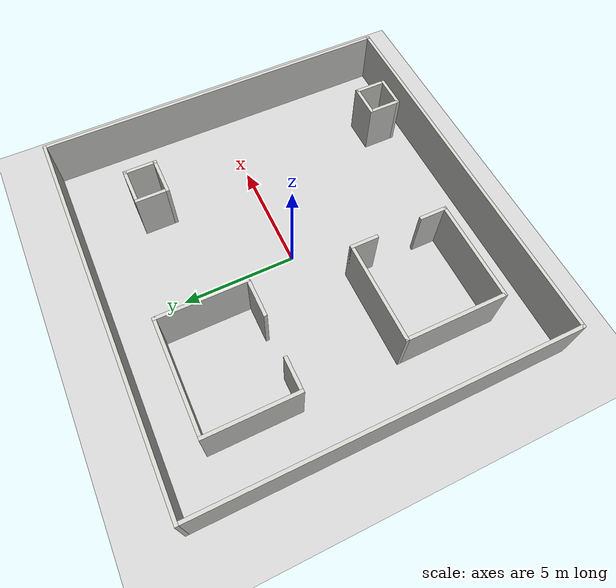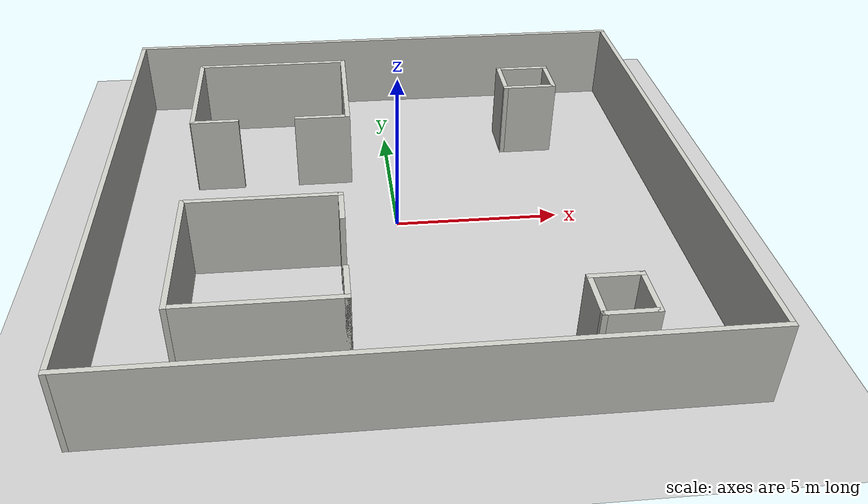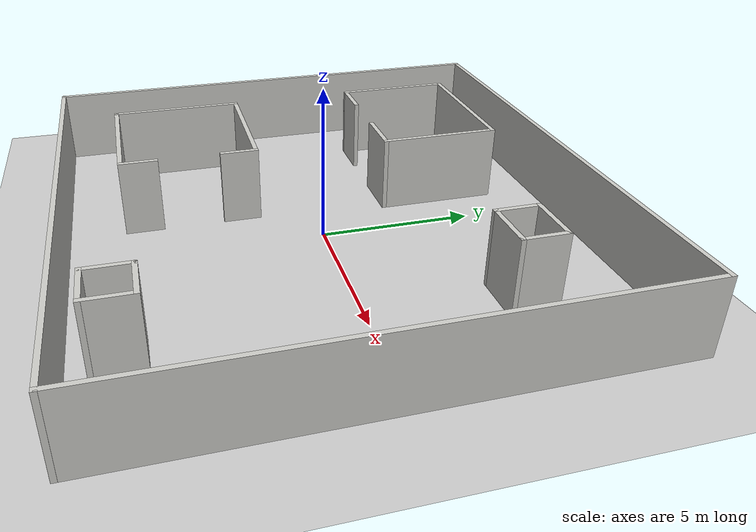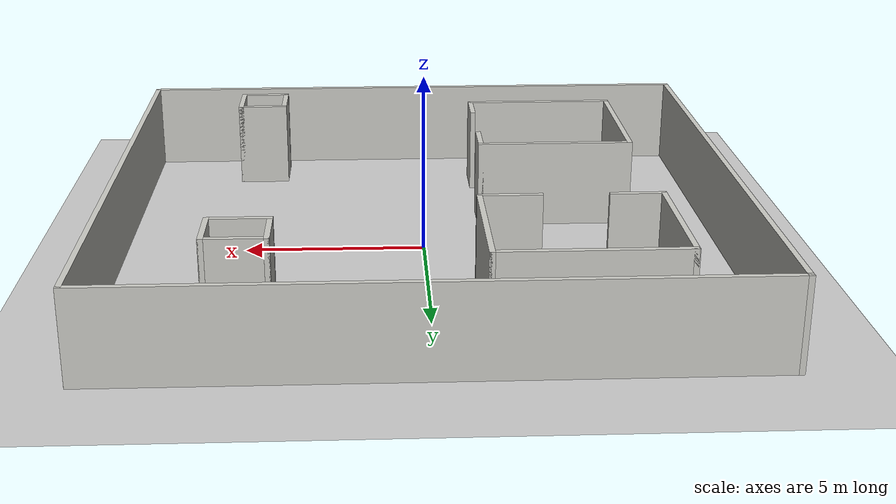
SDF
<?xml version="1.0"?>
<sdf version="1.7">
  <world name="default">

    <!-- Physics Settings (optional) -->
    <physics type="ode">
      <gravity>0 0 -9.8</gravity>
      <max_step_size>0.001</max_step_size>
    </physics>

    <!-- Ground Plane -->
    <model name="ground_plane">
      <pose>0 0 0 0 0 0</pose>
      <link name="link">
        <collision name="collision">
          <geometry>
            <plane>
              <normal>0 0 1</normal>
              <size>100 100</size>
            </plane>
          </geometry>
        </collision>
        <visual name="visual">
          <geometry>
            <plane>
              <normal>0 0 1</normal>
              <size>100 100</size>
            </plane>
          </geometry>
          <material>
            <ambient>0.3 0.3 0.3 1.0</ambient>
            <diffuse>0.8 0.8 0.8 1.0</diffuse>
            <specular>0.0 0.0 0.0 1.0</specular>
          </material>
        </visual>
      </link>
    </model>

    <!-- Add your building model -->
    <include>
      <uri>model://map3</uri> <!-- Reference to the model in Gazebo's model database -->
      <pose>0 0 0 0 0 0</pose> <!-- Position of the model in the world -->
    </include>

  </world>
</sdf>

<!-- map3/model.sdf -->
<sdf version='1.7'>
  <model name='map3'>
    <pose>0.337223 0.137515 0 0 -0 0</pose>
    <link name='Wall_11'>
      <collision name='Wall_11_Collision'>
        <geometry>
          <box>
            <size>4.99 0.15 2.5</size>
          </box>
        </geometry>
        <pose>0 0 1.25 0 -0 0</pose>
      </collision>
      <visual name='Wall_11_Visual'>
        <pose>0 0 1.25 0 -0 0</pose>
        <geometry>
          <box>
            <size>4.99 0.15 2.5</size>
          </box>
        </geometry>
        <material>
          <script>
            <uri>file://media/materials/scripts/gazebo.material</uri>
            <name>Gazebo/CeilingTiled</name>
          </script>
          <ambient>1 1 1 1</ambient>
        </material>
        <meta>
          <layer>0</layer>
        </meta>
      </visual>
      <pose>-3.77277 6.37017 0 0 -0 0</pose>
    </link>
    <link name='Wall_12'>
      <collision name='Wall_12_Collision'>
        <geometry>
          <box>
            <size>4 0.15 2.5</size>
          </box>
        </geometry>
        <pose>0 0 1.25 0 -0 0</pose>
      </collision>
      <visual name='Wall_12_Visual'>
        <pose>0 0 1.25 0 -0 0</pose>
        <geometry>
          <box>
            <size>4 0.15 2.5</size>
          </box>
        </geometry>
        <material>
          <script>
            <uri>file://media/materials/scripts/gazebo.material</uri>
            <name>Gazebo/CeilingTiled</name>
          </script>
          <ambient>1 1 1 1</ambient>
        </material>
        <meta>
          <layer>0</layer>
        </meta>
      </visual>
      <pose>-1.35277 4.44517 0 0 -0 -1.5708</pose>
    </link>
    <link name='Wall_13'>
      <collision name='Wall_13_Collision'>
        <geometry>
          <box>
            <size>1.75 0.15 2.5</size>
          </box>
        </geometry>
        <pose>0 0 1.25 0 -0 0</pose>
      </collision>
      <visual name='Wall_13_Visual'>
        <pose>0 0 1.25 0 -0 0</pose>
        <geometry>
          <box>
            <size>1.75 0.15 2.5</size>
          </box>
        </geometry>
        <material>
          <script>
            <uri>file://media/materials/scripts/gazebo.material</uri>
            <name>Gazebo/CeilingTiled</name>
          </script>
          <ambient>1 1 1 1</ambient>
        </material>
        <meta>
          <layer>0</layer>
        </meta>
      </visual>
      <pose>-2.15277 2.52017 0 0 -0 3.14159</pose>
    </link>
    <link name='Wall_15'>
      <collision name='Wall_15_Collision'>
        <geometry>
          <box>
            <size>4 0.15 2.5</size>
          </box>
        </geometry>
        <pose>0 0 1.25 0 -0 0</pose>
      </collision>
      <visual name='Wall_15_Visual'>
        <pose>0 0 1.25 0 -0 0</pose>
        <geometry>
          <box>
            <size>4 0.15 2.5</size>
          </box>
        </geometry>
        <material>
          <script>
            <uri>file://media/materials/scripts/gazebo.material</uri>
            <name>Gazebo/CeilingTiled</name>
          </script>
          <ambient>1 1 1 1</ambient>
        </material>
        <meta>
          <layer>0</layer>
        </meta>
      </visual>
      <pose>-6.21277 4.44517 0 0 -0 -1.5708</pose>
    </link>
    <link name='Wall_16'>
      <collision name='Wall_16_Collision'>
        <geometry>
          <box>
            <size>1.49 0.15 2.5</size>
          </box>
        </geometry>
        <pose>0 0 1.25 0 -0 0</pose>
      </collision>
      <visual name='Wall_16_Visual'>
        <pose>0 0 1.25 0 -0 0</pose>
        <geometry>
          <box>
            <size>1.49 0.15 2.5</size>
          </box>
        </geometry>
        <material>
          <script>
            <uri>file://media/materials/scripts/gazebo.material</uri>
            <name>Gazebo/CeilingTiled</name>
          </script>
          <ambient>1 1 1 1</ambient>
        </material>
        <meta>
          <layer>0</layer>
        </meta>
      </visual>
      <pose>-5.52277 2.52017 0 0 -0 0</pose>
    </link>
    <link name='Wall_21'>
      <collision name='Wall_21_Collision'>
        <geometry>
          <box>
            <size>4.47482 0.15 2.5</size>
          </box>
        </geometry>
        <pose>0 0 1.25 0 -0 0</pose>
      </collision>
      <visual name='Wall_21_Visual'>
        <pose>0 0 1.25 0 -0 0</pose>
        <geometry>
          <box>
            <size>4.47482 0.15 2.5</size>
          </box>
        </geometry>
        <material>
          <script>
            <uri>file://media/materials/scripts/gazebo.material</uri>
            <name>Gazebo/CeilingTiled</name>
          </script>
          <ambient>1 1 1 1</ambient>
        </material>
        <meta>
          <layer>0</layer>
        </meta>
      </visual>
      <pose>-6.09277 -3.98724 0 0 -0 -1.5708</pose>
    </link>
    <link name='Wall_30'>
      <collision name='Wall_30_Collision'>
        <geometry>
          <box>
            <size>1.75 0.15 2.5</size>
          </box>
        </geometry>
        <pose>0 0 1.25 0 -0 0</pose>
      </collision>
      <visual name='Wall_30_Visual'>
        <pose>0 0 1.25 0 -0 0</pose>
        <geometry>
          <box>
            <size>1.75 0.15 2.5</size>
          </box>
        </geometry>
        <material>
          <script>
            <uri>file://media/materials/scripts/gazebo.material</uri>
            <name>Gazebo/CeilingTiled</name>
          </script>
          <ambient>1 1 1 1</ambient>
        </material>
        <meta>
          <layer>0</layer>
        </meta>
      </visual>
      <pose>4.80629 5.28578 0 0 -0 0</pose>
    </link>
    <link name='Wall_31'>
      <collision name='Wall_31_Collision'>
        <geometry>
          <box>
            <size>1.5 0.15 2.5</size>
          </box>
        </geometry>
        <pose>0 0 1.25 0 -0 0</pose>
      </collision>
      <visual name='Wall_31_Visual'>
        <pose>0 0 1.25 0 -0 0</pose>
        <geometry>
          <box>
            <size>1.5 0.15 2.5</size>
          </box>
        </geometry>
        <material>
          <script>
            <uri>file://media/materials/scripts/gazebo.material</uri>
            <name>Gazebo/CeilingTiled</name>
          </script>
          <ambient>1 1 1 1</ambient>
        </material>
        <meta>
          <layer>0</layer>
        </meta>
      </visual>
      <pose>5.60629 4.61078 0 0 -0 -1.5708</pose>
    </link>
    <link name='Wall_32'>
      <collision name='Wall_32_Collision'>
        <geometry>
          <box>
            <size>1.75 0.15 2.5</size>
          </box>
        </geometry>
        <pose>0 0 1.25 0 -0 0</pose>
      </collision>
      <visual name='Wall_32_Visual'>
        <pose>0 0 1.25 0 -0 0</pose>
        <geometry>
          <box>
            <size>1.75 0.15 2.5</size>
          </box>
        </geometry>
        <material>
          <script>
            <uri>file://media/materials/scripts/gazebo.material</uri>
            <name>Gazebo/CeilingTiled</name>
          </script>
          <ambient>1 1 1 1</ambient>
        </material>
        <meta>
          <layer>0</layer>
        </meta>
      </visual>
      <pose>4.80629 3.93578 0 0 -0 3.14159</pose>
    </link>
    <link name='Wall_33'>
      <collision name='Wall_33_Collision'>
        <geometry>
          <box>
            <size>1.5 0.15 2.5</size>
          </box>
        </geometry>
        <pose>0 0 1.25 0 -0 0</pose>
      </collision>
      <visual name='Wall_33_Visual'>
        <pose>0 0 1.25 0 -0 0</pose>
        <geometry>
          <box>
            <size>1.5 0.15 2.5</size>
          </box>
        </geometry>
        <material>
          <script>
            <uri>file://media/materials/scripts/gazebo.material</uri>
            <name>Gazebo/CeilingTiled</name>
          </script>
          <ambient>1 1 1 1</ambient>
        </material>
        <meta>
          <layer>0</layer>
        </meta>
      </visual>
      <pose>4.00629 4.61078 0 0 -0 1.5708</pose>
    </link>
    <link name='Wall_35'>
      <collision name='Wall_35_Collision'>
        <geometry>
          <box>
            <size>1.5 0.15 2.5</size>
          </box>
        </geometry>
        <pose>0 0 1.25 0 -0 0</pose>
      </collision>
      <visual name='Wall_35_Visual'>
        <pose>0 0 1.25 0 -0 0</pose>
        <geometry>
          <box>
            <size>1.5 0.15 2.5</size>
          </box>
        </geometry>
        <material>
          <script>
            <uri>file://media/materials/scripts/gazebo.material</uri>
            <name>Gazebo/CeilingTiled</name>
          </script>
          <ambient>1 1 1 1</ambient>
        </material>
        <meta>
          <layer>0</layer>
        </meta>
      </visual>
      <pose>4.86133 -5.94284 0 0 -0 0</pose>
    </link>
    <link name='Wall_36'>
      <collision name='Wall_36_Collision'>
        <geometry>
          <box>
            <size>1.5 0.15 2.5</size>
          </box>
        </geometry>
        <pose>0 0 1.25 0 -0 0</pose>
      </collision>
      <visual name='Wall_36_Visual'>
        <pose>0 0 1.25 0 -0 0</pose>
        <geometry>
          <box>
            <size>1.5 0.15 2.5</size>
          </box>
        </geometry>
        <material>
          <script>
            <uri>file://media/materials/scripts/gazebo.material</uri>
            <name>Gazebo/CeilingTiled</name>
          </script>
          <ambient>1 1 1 1</ambient>
        </material>
        <meta>
          <layer>0</layer>
        </meta>
      </visual>
      <pose>5.53633 -6.61784 0 0 -0 -1.5708</pose>
    </link>
    <link name='Wall_37'>
      <collision name='Wall_37_Collision'>
        <geometry>
          <box>
            <size>1.5 0.15 2.5</size>
          </box>
        </geometry>
        <pose>0 0 1.25 0 -0 0</pose>
      </collision>
      <visual name='Wall_37_Visual'>
        <pose>0 0 1.25 0 -0 0</pose>
        <geometry>
          <box>
            <size>1.5 0.15 2.5</size>
          </box>
        </geometry>
        <material>
          <script>
            <uri>file://media/materials/scripts/gazebo.material</uri>
            <name>Gazebo/CeilingTiled</name>
          </script>
          <ambient>1 1 1 1</ambient>
        </material>
        <meta>
          <layer>0</layer>
        </meta>
      </visual>
      <pose>4.86133 -7.29284 0 0 -0 3.14159</pose>
    </link>
    <link name='Wall_38'>
      <collision name='Wall_38_Collision'>
        <geometry>
          <box>
            <size>1.5 0.15 2.5</size>
          </box>
        </geometry>
        <pose>0 0 1.25 0 -0 0</pose>
      </collision>
      <visual name='Wall_38_Visual'>
        <pose>0 0 1.25 0 -0 0</pose>
        <geometry>
          <box>
            <size>1.5 0.15 2.5</size>
          </box>
        </geometry>
        <material>
          <script>
            <uri>file://media/materials/scripts/gazebo.material</uri>
            <name>Gazebo/CeilingTiled</name>
          </script>
          <ambient>1 1 1 1</ambient>
        </material>
        <meta>
          <layer>0</layer>
        </meta>
      </visual>
      <pose>4.18633 -6.61784 0 0 -0 1.5708</pose>
    </link>
    <link name='Wall_40'>
      <collision name='Wall_40_Collision'>
        <geometry>
          <box>
            <size>4.5 0.15 2.5</size>
          </box>
        </geometry>
        <pose>0 0 1.25 0 -0 0</pose>
      </collision>
      <visual name='Wall_40_Visual'>
        <pose>0 0 1.25 0 -0 0</pose>
        <geometry>
          <box>
            <size>4.5 0.15 2.5</size>
          </box>
        </geometry>
        <material>
          <script>
            <uri>file://media/materials/scripts/gazebo.material</uri>
            <name>Gazebo/CeilingTiled</name>
          </script>
          <ambient>1 1 1 1</ambient>
        </material>
        <meta>
          <layer>0</layer>
        </meta>
      </visual>
      <pose>-3.91777 -1.82482 0 0 -0 0</pose>
    </link>
    <link name='Wall_41'>
      <collision name='Wall_41_Collision'>
        <geometry>
          <box>
            <size>1.25 0.15 2.5</size>
          </box>
        </geometry>
        <pose>0 0 1.25 0 -0 0</pose>
      </collision>
      <visual name='Wall_41_Visual'>
        <pose>0 0 1.25 0 -0 0</pose>
        <geometry>
          <box>
            <size>1.25 0.15 2.5</size>
          </box>
        </geometry>
        <material>
          <script>
            <uri>file://media/materials/scripts/gazebo.material</uri>
            <name>Gazebo/CeilingTiled</name>
          </script>
          <ambient>1 1 1 1</ambient>
        </material>
        <meta>
          <layer>0</layer>
        </meta>
      </visual>
      <pose>-1.74277 -2.37482 0 0 -0 -1.5708</pose>
    </link>
    <link name='Wall_43'>
      <collision name='Wall_43_Collision'>
        <geometry>
          <box>
            <size>4.5 0.15 2.5</size>
          </box>
        </geometry>
        <pose>0 0 1.25 0 -0 0</pose>
      </collision>
      <visual name='Wall_43_Visual'>
        <pose>0 0 1.25 0 -0 0</pose>
        <geometry>
          <box>
            <size>4.5 0.15 2.5</size>
          </box>
        </geometry>
        <material>
          <script>
            <uri>file://media/materials/scripts/gazebo.material</uri>
            <name>Gazebo/CeilingTiled</name>
          </script>
          <ambient>1 1 1 1</ambient>
        </material>
        <meta>
          <layer>0</layer>
        </meta>
      </visual>
      <pose>-3.91777 -6.14965 0 0 -0 0</pose>
    </link>
    <link name='Wall_44'>
      <collision name='Wall_44_Collision'>
        <geometry>
          <box>
            <size>1.25 0.15 2.5</size>
          </box>
        </geometry>
        <pose>0 0 1.25 0 -0 0</pose>
      </collision>
      <visual name='Wall_44_Visual'>
        <pose>0 0 1.25 0 -0 0</pose>
        <geometry>
          <box>
            <size>1.25 0.15 2.5</size>
          </box>
        </geometry>
        <material>
          <script>
            <uri>file://media/materials/scripts/gazebo.material</uri>
            <name>Gazebo/CeilingTiled</name>
          </script>
          <ambient>1 1 1 1</ambient>
        </material>
        <meta>
          <layer>0</layer>
        </meta>
      </visual>
      <pose>-1.74277 -5.59965 0 0 -0 1.5708</pose>
    </link>
    <link name='Wall_5'>
      <collision name='Wall_5_Collision'>
        <geometry>
          <box>
            <size>17 0.15 2.5</size>
          </box>
        </geometry>
        <pose>0 0 1.25 0 -0 0</pose>
      </collision>
      <visual name='Wall_5_Visual'>
        <pose>0 0 1.25 0 -0 0</pose>
        <geometry>
          <box>
            <size>17 0.15 2.5</size>
          </box>
        </geometry>
        <material>
          <script>
            <uri>file://media/materials/scripts/gazebo.material</uri>
            <name>Gazebo/CeilingTiled</name>
          </script>
          <ambient>1 1 1 1</ambient>
        </material>
        <meta>
          <layer>0</layer>
        </meta>
      </visual>
      <pose>0 8.05 0 0 -0 0</pose>
    </link>
    <link name='Wall_6'>
      <collision name='Wall_6_Collision'>
        <geometry>
          <box>
            <size>16.25 0.15 2.5</size>
          </box>
        </geometry>
        <pose>0 0 1.25 0 -0 0</pose>
      </collision>
      <visual name='Wall_6_Visual'>
        <pose>0 0 1.25 0 -0 0</pose>
        <geometry>
          <box>
            <size>16.25 0.15 2.5</size>
          </box>
        </geometry>
        <material>
          <script>
            <uri>file://media/materials/scripts/gazebo.material</uri>
            <name>Gazebo/CeilingTiled</name>
          </script>
          <ambient>1 1 1 1</ambient>
        </material>
        <meta>
          <layer>0</layer>
        </meta>
      </visual>
      <pose>8.425 -0 0 0 -0 -1.5708</pose>
    </link>
    <link name='Wall_7'>
      <collision name='Wall_7_Collision'>
        <geometry>
          <box>
            <size>17 0.15 2.5</size>
          </box>
        </geometry>
        <pose>0 0 1.25 0 -0 0</pose>
      </collision>
      <visual name='Wall_7_Visual'>
        <pose>0 0 1.25 0 -0 0</pose>
        <geometry>
          <box>
            <size>17 0.15 2.5</size>
          </box>
        </geometry>
        <material>
          <script>
            <uri>file://media/materials/scripts/gazebo.material</uri>
            <name>Gazebo/CeilingTiled</name>
          </script>
          <ambient>1 1 1 1</ambient>
        </material>
        <meta>
          <layer>0</layer>
        </meta>
      </visual>
      <pose>0 -8.05 0 0 -0 3.14159</pose>
    </link>
    <link name='Wall_9'>
      <collision name='Wall_9_Collision'>
        <geometry>
          <box>
            <size>16.25 0.15 2.5</size>
          </box>
        </geometry>
        <pose>0 0 1.25 0 -0 0</pose>
      </collision>
      <visual name='Wall_9_Visual'>
        <pose>0 0 1.25 0 -0 0</pose>
        <geometry>
          <box>
            <size>16.25 0.15 2.5</size>
          </box>
        </geometry>
        <material>
          <script>
            <uri>file://media/materials/scripts/gazebo.material</uri>
            <name>Gazebo/CeilingTiled</name>
          </script>
          <ambient>1 1 1 1</ambient>
        </material>
        <meta>
          <layer>0</layer>
        </meta>
      </visual>
      <pose>-8.425 -0 0 0 -0 -1.5708</pose>
    </link>
    <static>1</static>
  </model>
</sdf>
